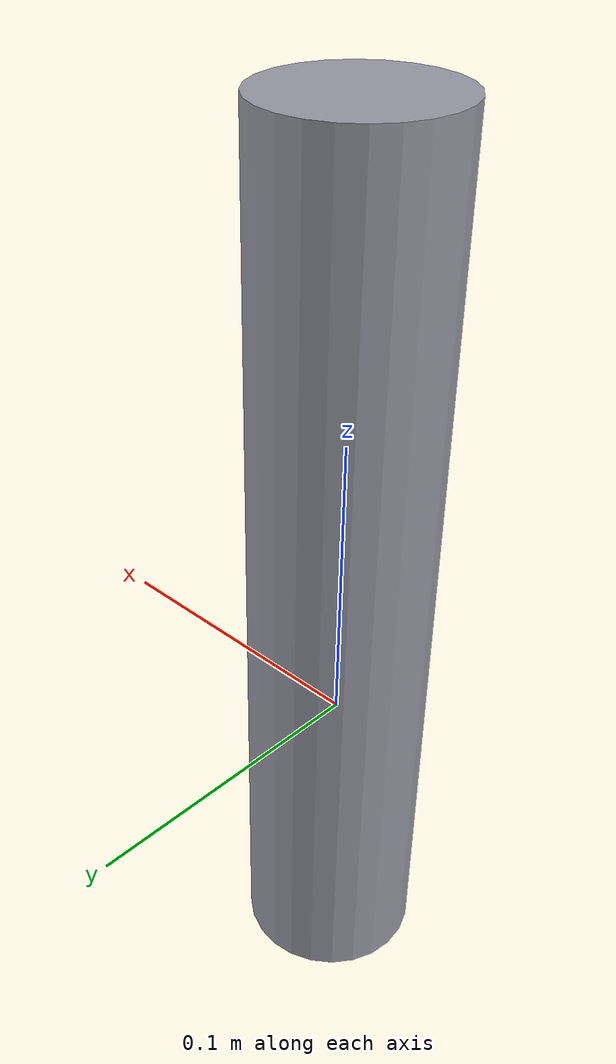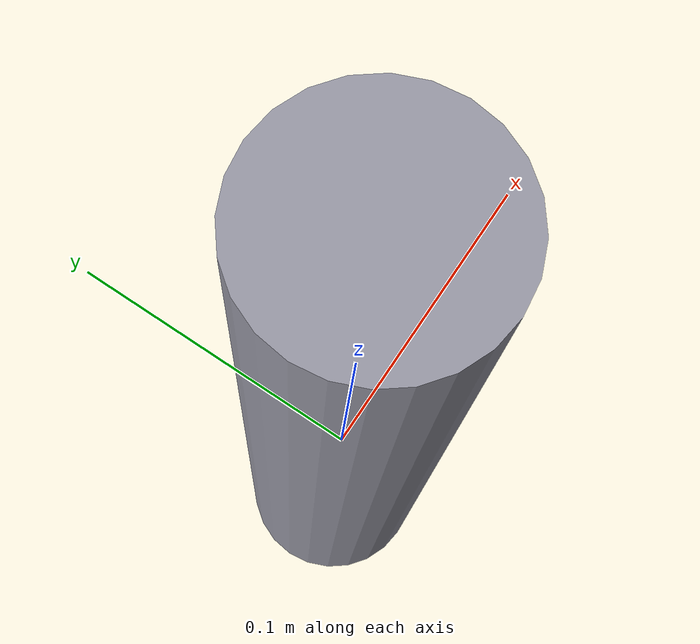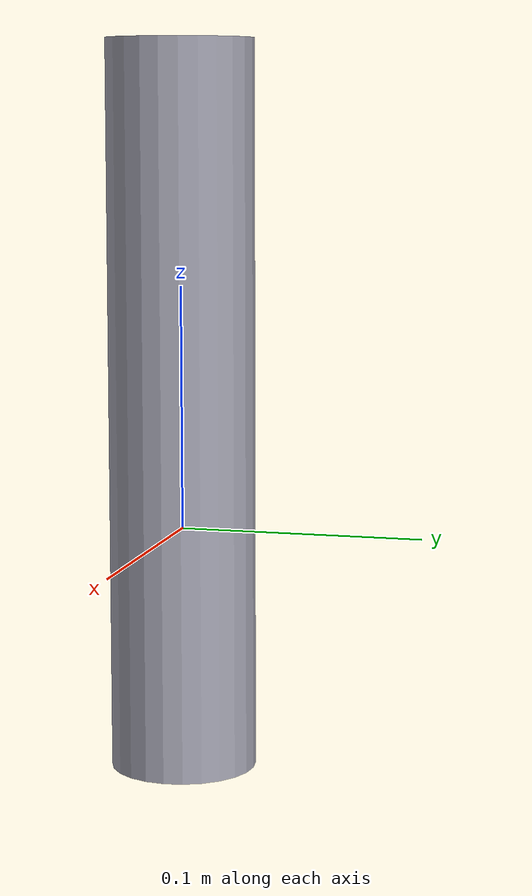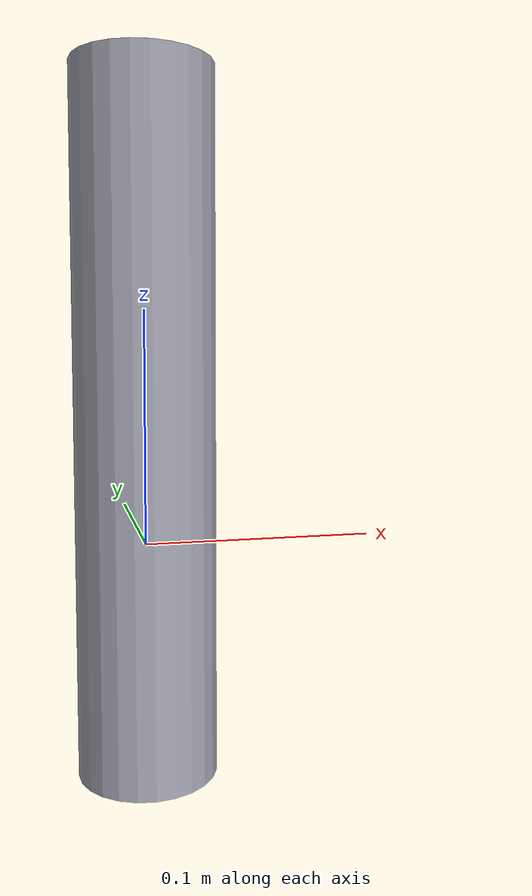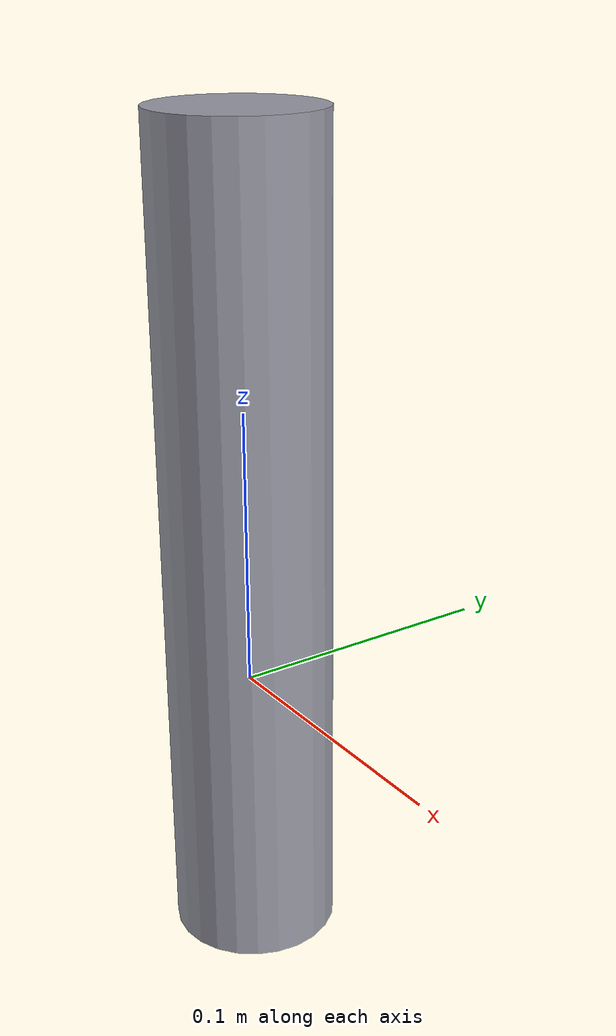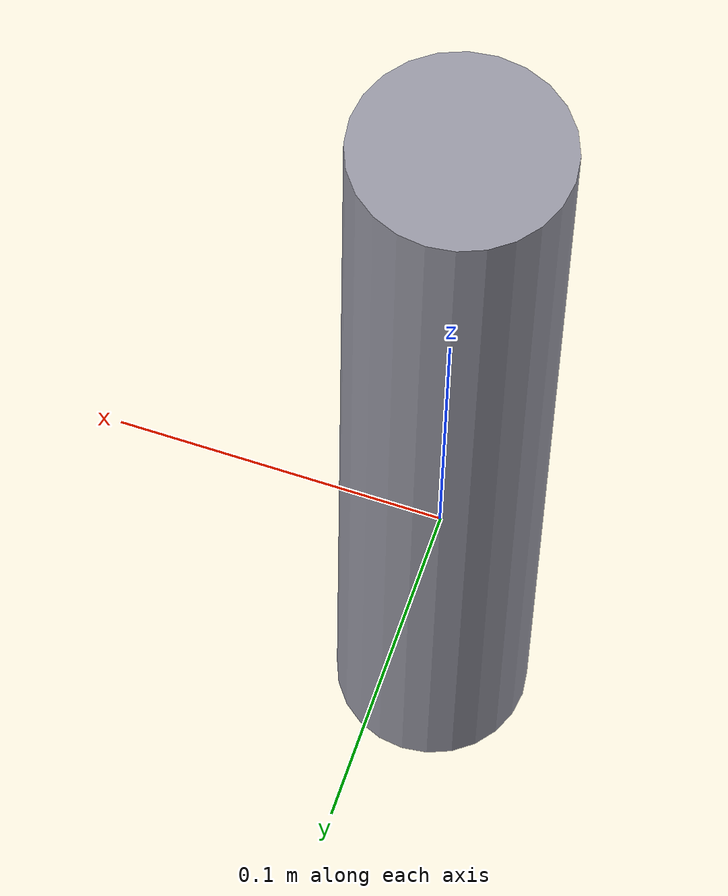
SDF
<sdf version="1.12">
  <model name="articulated-arm">
    <link name="base">
    </link>
    <link name="shoulder">
      <pose relative_to="j1">0 0 0 0 0 0</pose>
    </link>
    <link name="forearm">
      <pose relative_to="j2">0 0 0 0 0 0</pose>
      <visual name="forearm_vis">
        <geometry>
          <cylinder>
            <radius>0.03</radius>
            <length>0.30</length>
          </cylinder>
        </geometry>
        <material>
          <diffuse>0.6 0.6 0.65 1.0</diffuse>
        </material>
      </visual>
    </link>
    <link name="wrist">
      <pose relative_to="j_wrist">0 0 0 0 0 0</pose>
    </link>
    <link name="finger_left">
      <pose relative_to="j_finger_l">0 0 0 0 0 0</pose>
    </link>
    <link name="finger_right">
      <pose relative_to="j_finger_r">0 0 0 0 0 0</pose>
    </link>
    <frame name="mount" attached_to="wrist">
    </frame>
    <frame name="tcp" attached_to="mount">
    </frame>
    <frame name="wrt_forearm" attached_to="forearm">
    </frame>
    <frame name="wrt_j2" attached_to="j2">
    </frame>
    <joint name="j1" type="revolute">
      <parent>base</parent>
      <child>shoulder</child>
      <pose relative_to="base">0 0 0 0 0 0</pose>
      <axis>
        <xyz>0 0 1</xyz>
        <limit>
          <lower>-1.57</lower>
          <upper>1.57</upper>
          <effort>40</effort>
          <velocity>2.0</velocity>
        </limit>
      </axis>
    </joint>
    <joint name="j2" type="revolute">
      <parent>shoulder</parent>
      <child>forearm</child>
      <pose relative_to="shoulder">0 0 0.05 0 0 0</pose>
      <axis>
        <xyz>0 1 0</xyz>
        <limit>
          <lower>-2.6</lower>
          <upper>2.6</upper>
          <effort>30</effort>
          <velocity>2.5</velocity>
        </limit>
      </axis>
    </joint>
    <joint name="j_wrist" type="revolute">
      <parent>forearm</parent>
      <child>wrist</child>
      <pose relative_to="forearm">0 0 0.3 0 0 0</pose>
      <axis>
        <xyz>1 0 0</xyz>
      </axis>
    </joint>
    <joint name="j_finger_l" type="prismatic">
      <parent>wrist</parent>
      <child>finger_left</child>
      <pose relative_to="wrist">0 0 0 0 0 0</pose>
      <axis>
        <xyz>0 1 0</xyz>
        <limit>
          <lower>0</lower>
          <upper>0.04</upper>
          <effort>60</effort>
          <velocity>0.1</velocity>
        </limit>
      </axis>
    </joint>
    <joint name="j_finger_r" type="prismatic">
      <parent>wrist</parent>
      <child>finger_right</child>
      <pose relative_to="wrist">0 0 0 0 0 0</pose>
      <axis>
        <xyz>0 1 0</xyz>
        <limit>
          <lower>0</lower>
          <upper>0.04</upper>
          <effort>60</effort>
          <velocity>0.1</velocity>
        </limit>
        <mimic joint="j_finger_l">
          <reference>0</reference>
          <multiplier>-1</multiplier>
        </mimic>
      </axis>
    </joint>
  </model>
</sdf>
